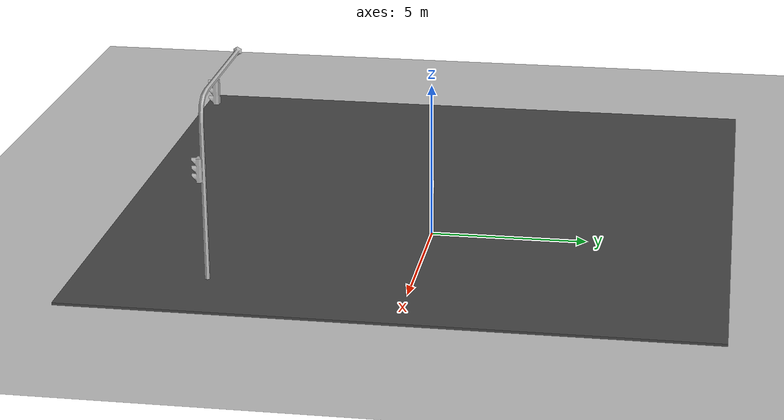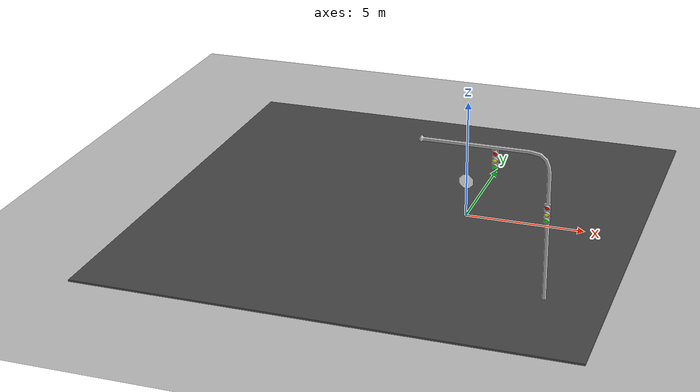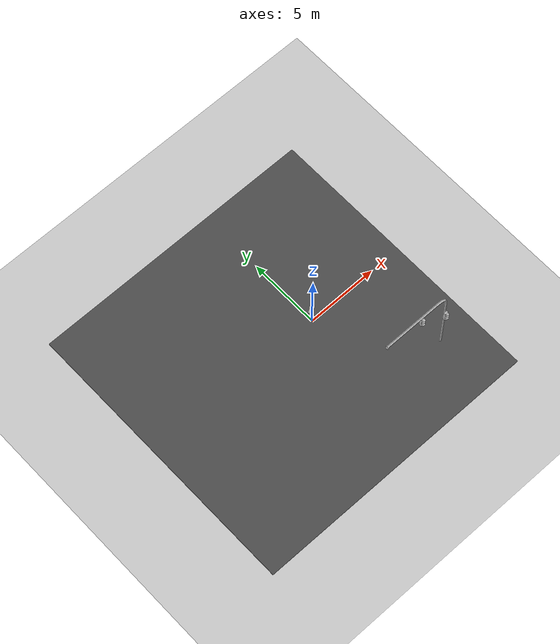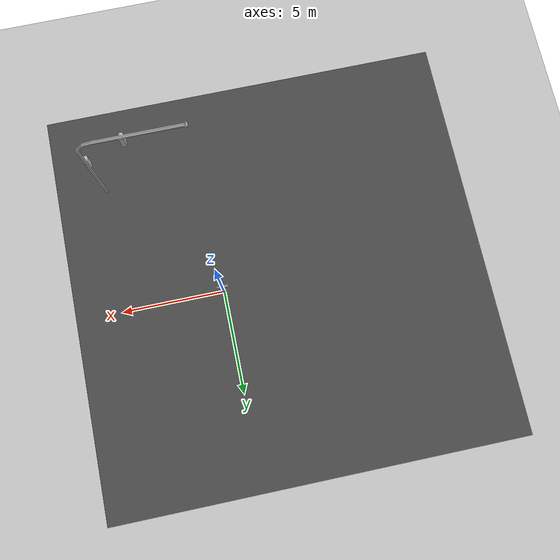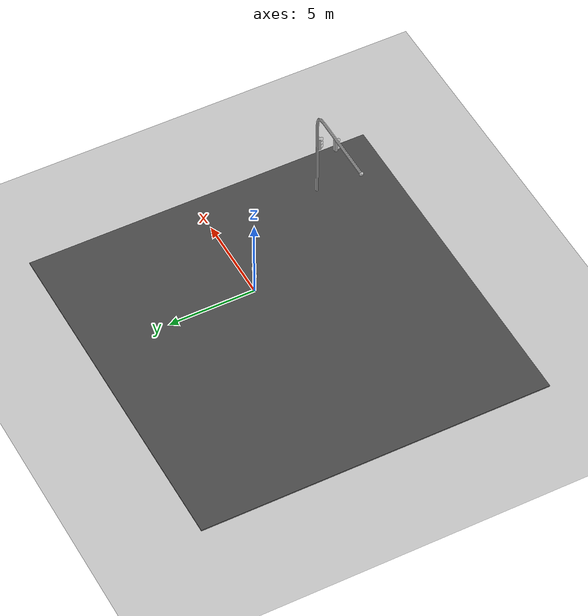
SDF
<sdf version="1.7">
 <world name="myworld">
  <light name="sun" type="directional">
   <pose>0 0 10 0 -0 0</pose>
   <diffuse>0.8 0.8 0.8 1</diffuse>
   <specular>0.2 0.2 0.2 1</specular>
   <attenuation>
    <range>1000</range>
    <constant>0.9</constant>
    <linear>0.01</linear>
    <quadratic>0.001</quadratic>
   </attenuation>
   <direction>-0.5 0.1 -0.9</direction>
   <spot><inner_angle>0</inner_angle><outer_angle>0</outer_angle><falloff>0</falloff></spot>
  </light>
  <model name="ground_plane">
   <static>1</static>
   <link name="link">
    <collision name="collision">
     <geometry><plane><normal>0 0 1</normal><size>100 100</size></plane></geometry>
     <surface>
      <contact><collide_bitmask>65535</collide_bitmask></contact>
      <friction><ode><mu>100</mu><mu2>50</mu2></ode></friction>
     </surface>
    </collision>
    <visual name="visual">
     <cast_shadows>0</cast_shadows>
     <geometry><plane><normal>0 0 1</normal><size>100 100</size></plane></geometry>
     <material>
      <script><uri>file://media/materials/scripts/gazebo.material</uri><name>Gazebo/Grey</name></script>
     </material>
    </visual>
   </link>
  </model>
  <gravity>0 0 -9.8</gravity>
  <magnetic_field>6e-06 2.3e-05 -4.2e-05</magnetic_field>
  <atmosphere type="adiabatic"/>
  <physics type="ode">
   <max_step_size>0.001</max_step_size>
   <real_time_factor>1</real_time_factor>
   <real_time_update_rate>1000</real_time_update_rate>
  </physics>
  <scene><ambient>0.4 0.4 0.4 1</ambient><background>0.7 0.7 0.7 1</background><shadows>1</shadows></scene>
  <spherical_coordinates>
   <surface_model>EARTH_WGS84</surface_model>
   <latitude_deg>0</latitude_deg>
   <longitude_deg>0</longitude_deg>
   <elevation>0</elevation>
   <heading_deg>0</heading_deg>
  </spherical_coordinates>
  <model name="asphalt_plane">
   <static>1</static>
   <link name="link">
    <collision name="collision"><geometry><box><size>20 20 0.1</size></box></geometry></collision>
    <visual name="visual">
     <cast_shadows>0</cast_shadows>
     <geometry><box><size>20 20 0.1</size></box></geometry>
     <material>
      <script>
       <uri>model://asphalt_plane/materials/scripts</uri>
       <uri>model://asphalt_plane/materials/textures</uri>
       <name>vrc/asphalt</name>
      </script>
     </material>
    </visual>
   </link>
   <pose>-2.76876 -0.392771 0 0 -0 0</pose>
  </model>
  <model name="Stop Sign">
   <static>1</static>
   <link name="link">
    <collision name="collision">
     <geometry><mesh><uri>model://stop_sign/meshes/stop_sign.dae</uri></mesh></geometry>
    </collision>
    <visual name="visual">
     <geometry><mesh><uri>model://stop_sign/meshes/stop_sign.dae</uri></mesh></geometry>
     <material>
      <script>
       <uri>model://stop_sign/materials/scripts</uri>
       <uri>model://stop_sign/materials/textures</uri>
       <name>StopSign/Diffuse</name>
      </script>
     </material>
    </visual>
   </link>
   <pose>-0.033405 0.048268 0 0 -0 0</pose>
  </model>
  <model name="stop_light_post">
   <static>1</static>
   <link name="link">
    <collision name="post">
     <geometry>
      <mesh><uri>model://stop_light_post/meshes/stop_light_post.obj</uri><scale>0.01 0.01 0.01</scale></mesh>
     </geometry>
    </collision>
    <visual name="post">
     <geometry>
      <mesh><uri>model://stop_light_post/meshes/stop_light_post.obj</uri><scale>0.01 0.01 0.01</scale></mesh>
     </geometry>
    </visual>
   </link>
   <frame name="right_light::__model__" attached_to="right_light::link">
    <pose relative_to="__model__">0 -0.05 4 0 -0 0</pose>
   </frame>
   <static>1</static>
   <link name="right_light::link">
    <collision name="collision">
     <geometry>
      <mesh><uri>model://stop_light/meshes/stop_light.obj</uri><scale>0.01 0.01 0.01</scale></mesh>
     </geometry>
    </collision>
    <visual name="frame">
     <geometry>
      <mesh><uri>model://stop_light/meshes/stop_light.obj</uri><scale>0.01 0.01 0.01</scale></mesh>
     </geometry>
    </visual>
    <visual name="red">
     <pose>-0.001123 -0.082251 -0.147514 0 -0 0</pose>
     <geometry><sphere><radius>0.1012</radius></sphere></geometry>
     <material>
      <script>
       <uri>model://stop_light/materials/scripts/</uri>
       <uri>model://stop_light/materials/textures/</uri>
       <name>StopLight/Light</name>
      </script>
      <ambient>1 0 0 1</ambient>
      <specular>1 0 0 1</specular>
     </material>
    </visual>
    <visual name="yellow">
     <pose>-0.001123 -0.082251 -0.402 0 -0 0</pose>
     <geometry><sphere><radius>0.1012</radius></sphere></geometry>
     <material>
      <script>
       <uri>model://stop_light/materials/scripts/</uri>
       <uri>model://stop_light/materials/textures/</uri>
       <name>StopLight/Light</name>
      </script>
      <ambient>1 1 0 1</ambient>
      <specular>1 1 0 1</specular>
     </material>
    </visual>
    <visual name="green">
     <pose>-0.001123 -0.082251 -0.655 0 -0 0</pose>
     <geometry><sphere><radius>0.1012</radius></sphere></geometry>
     <material>
      <script>
       <uri>model://stop_light/materials/scripts/</uri>
       <uri>model://stop_light/materials/textures/</uri>
       <name>StopLight/Light</name>
      </script>
      <ambient>0 1 0 1</ambient>
      <specular>0 1 0 1</specular>
     </material>
    </visual>
    <pose relative_to="right_light::__model__">0 0 0 0 -0 0</pose>
   </link>
   <frame name="center_light::__model__" attached_to="center_light::link">
    <pose relative_to="__model__">-2 0.04 5.82 0 -0 0</pose>
   </frame>
   <static>1</static>
   <link name="center_light::link">
    <collision name="collision">
     <geometry>
      <mesh><uri>model://stop_light/meshes/stop_light.obj</uri><scale>0.01 0.01 0.01</scale></mesh>
     </geometry>
    </collision>
    <visual name="frame">
     <geometry>
      <mesh><uri>model://stop_light/meshes/stop_light.obj</uri><scale>0.01 0.01 0.01</scale></mesh>
     </geometry>
    </visual>
    <visual name="red">
     <pose>-0.001123 -0.082251 -0.147514 0 -0 0</pose>
     <geometry><sphere><radius>0.1012</radius></sphere></geometry>
     <material>
      <script>
       <uri>model://stop_light/materials/scripts/</uri>
       <uri>model://stop_light/materials/textures/</uri>
       <name>StopLight/Light</name>
      </script>
      <ambient>1 0 0 1</ambient>
      <specular>1 0 0 1</specular>
     </material>
    </visual>
    <visual name="yellow">
     <pose>-0.001123 -0.082251 -0.402 0 -0 0</pose>
     <geometry><sphere><radius>0.1012</radius></sphere></geometry>
     <material>
      <script>
       <uri>model://stop_light/materials/scripts/</uri>
       <uri>model://stop_light/materials/textures/</uri>
       <name>StopLight/Light</name>
      </script>
      <ambient>1 1 0 1</ambient>
      <specular>1 1 0 1</specular>
     </material>
    </visual>
    <visual name="green">
     <pose>-0.001123 -0.082251 -0.655 0 -0 0</pose>
     <geometry><sphere><radius>0.1012</radius></sphere></geometry>
     <material>
      <script>
       <uri>model://stop_light/materials/scripts/</uri>
       <uri>model://stop_light/materials/textures/</uri>
       <name>StopLight/Light</name>
      </script>
      <ambient>0 1 0 1</ambient>
      <specular>0 1 0 1</specular>
     </material>
    </visual>
    <pose relative_to="center_light::__model__">0 0 0 0 -0 0</pose>
   </link>
   <pose>4.79281 -6.23447 0 0 -0 0</pose>
  </model>
 </world>
</sdf>
